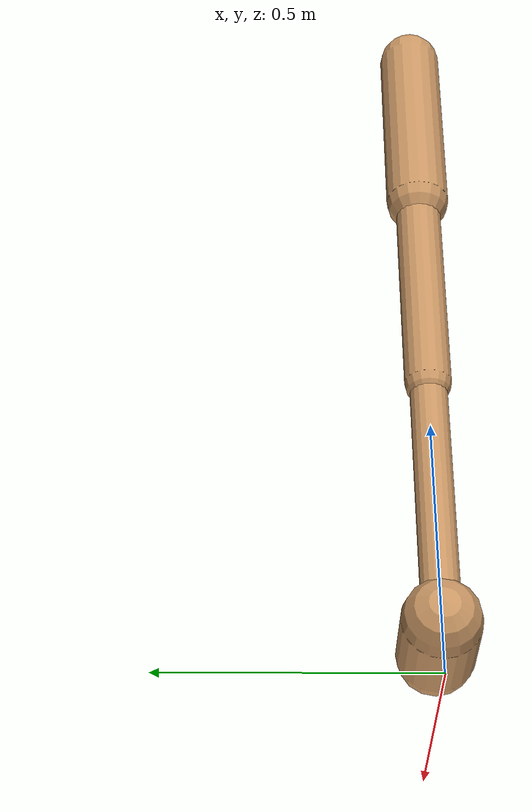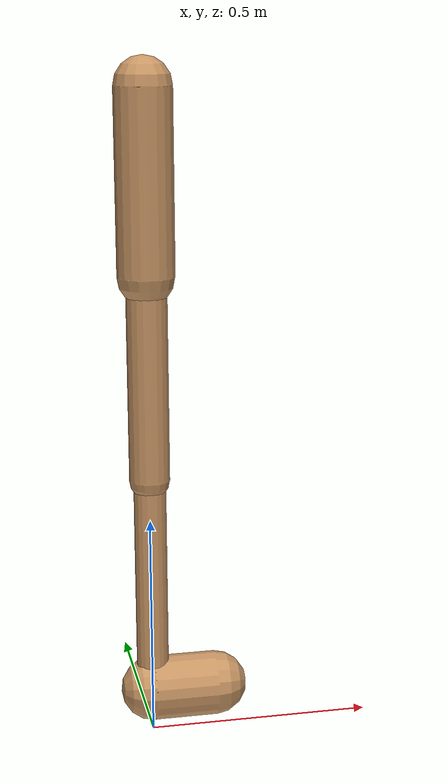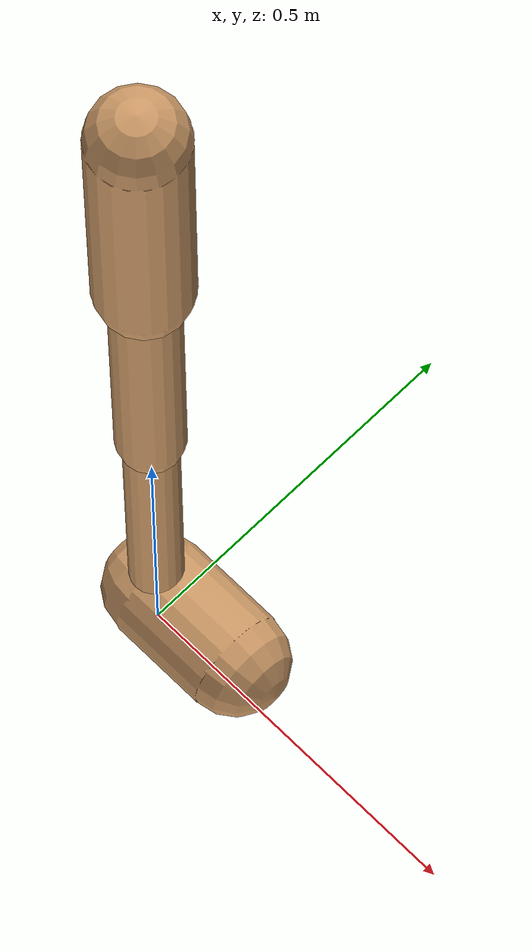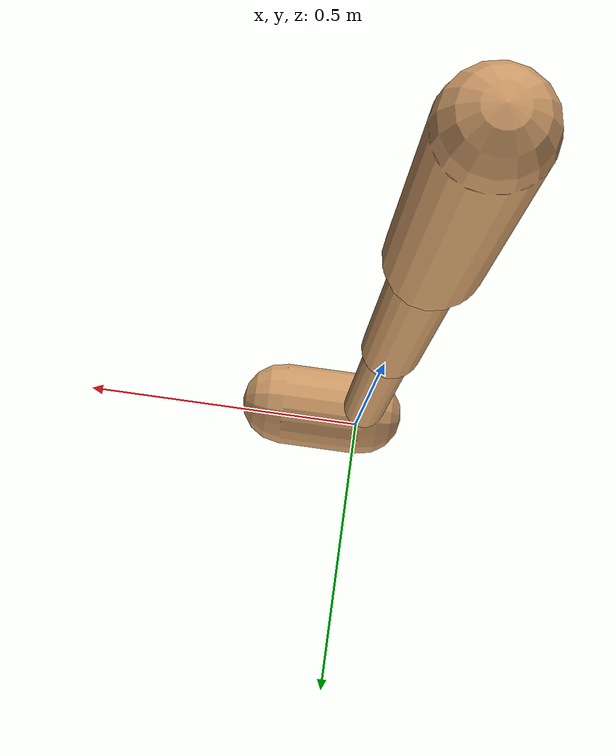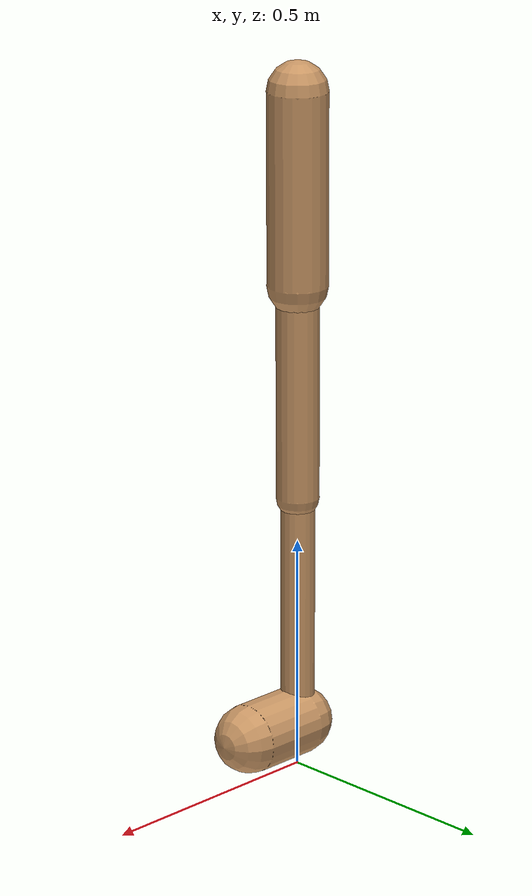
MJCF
<mujoco model="walker2d">
  <compiler angle="degree" coordinate="global" inertiafromgeom="true" />
  <default>
    <joint armature="0.01" damping=".1" limited="true" />
    <geom conaffinity="0" condim="3" contype="1" density="1000" friction="0.8 .1 .1" rgba="0.8 0.6 .4 1" />
  </default>
  <option integrator="RK4" timestep="0.002" />
  <worldbody>

    <body name="torso" pos="0 0 0.006245770483584362">
      <joint armature="0" axis="1 0 0" damping="0" limited="false" name="ignorex" pos="0 0 0" stiffness="0" type="slide" />
      <joint armature="0" axis="0 0 1" damping="0" limited="false" name="ignorez" pos="0 0 0" ref="1.25" stiffness="0" type="slide" />
      <joint armature="0" axis="0 1 0" damping="0" limited="false" name="ignorey" pos="0 0 0" stiffness="0" type="hinge" />
      <geom fromto="0 0 1.45 0 0 1.05" name="torso_geom" size="0.06309405416360701" type="capsule" />
      <body name="thigh">
        <joint axis="0 -1 0" name="thigh_joint" pos="0 0 1.05" range="-150 0" type="hinge" />
        <geom fromto="0.0 0.0 1.05 0.0 0.0 0.5970414771393547" name="thigh_geom" size="0.04508700425482043" type="capsule" />
        <body name="leg" pos="0.0 0.0 -0.0029585228606452407">
          <joint axis="0 -1 0" name="leg_joint" pos="0 0 0.6" range="-150 0" type="hinge" />
          <geom fromto="0.0 0.0 0.6 0.0 0.0 0.09671275237706087" name="leg_geom" size="0.03606960340385634" type="capsule" />
          <body name="foot" pos="0.0 0.0 -0.003287247622939138">
            <joint axis="0 -1 0" name="foot_joint" pos="0 0 0.1" range="-45 45" type="hinge" />
            <geom fromto="0.0 0.0 0.1 0.1420489422786543 0.0 0.1" name="foot_geom" size="0.07257983963535733" type="capsule" />
          </body>
        </body>
      </body>

      <body name="thigh_left">
        <joint axis="0 -1 0" name="thigh_left_joint" pos="0 0 1.05" range="-150 0" type="hinge" />
        <geom fromto="0.0 0.0 1.05 0.0 0.0 0.5970414771393547" name="thigh_left_geom" rgba=".7 .3 .6 1" size="0.04508700425482043" type="capsule" />
        <body name="leg_left" pos="0.0 0.0 -0.0029585228606452407">
          <joint axis="0 -1 0" name="leg_left_joint" pos="0 0 0.6" range="-150 0" type="hinge" />
          <geom fromto="0.0 0.0 0.6 0.0 0.0 0.09671275237706087" name="leg_left_geom" rgba=".7 .3 .6 1" size="0.03606960340385634" type="capsule" />
          <body name="foot_left" pos="0.0 0.0 -0.003287247622939138">
            <joint axis="0 -1 0" name="foot_left_joint" pos="0 0 0.1" range="-45 45" type="hinge" />
            <geom fromto="0.0 0.0 0.1 0.1420489422786543 0.0 0.1" name="foot_left_geom" rgba=".7 .3 .6 1" size="0.07257983963535733" type="capsule" />
          </body>
        </body>
      </body>
    </body>
  </worldbody>
  <actuator>

    <motor ctrllimited="true" ctrlrange="-1.0 1.0" gear="100" joint="thigh_joint" />
    <motor ctrllimited="true" ctrlrange="-1.0 1.0" gear="100" joint="leg_joint" />
    <motor ctrllimited="true" ctrlrange="-1.0 1.0" gear="100" joint="foot_joint" />
    <motor ctrllimited="true" ctrlrange="-1.0 1.0" gear="100" joint="thigh_left_joint" />
    <motor ctrllimited="true" ctrlrange="-1.0 1.0" gear="100" joint="leg_left_joint" />
    <motor ctrllimited="true" ctrlrange="-1.0 1.0" gear="100" joint="foot_left_joint" />

  </actuator>
</mujoco>
